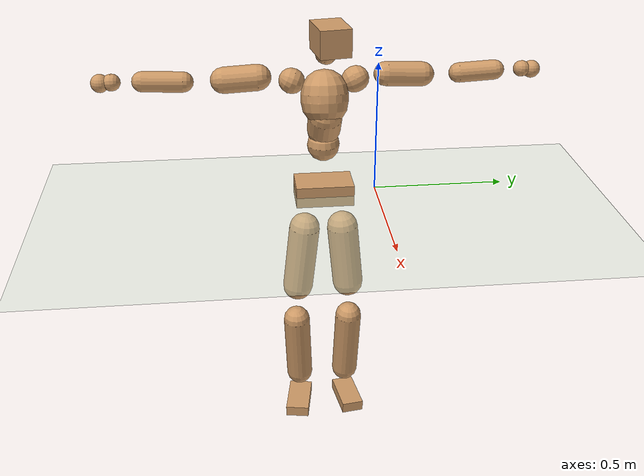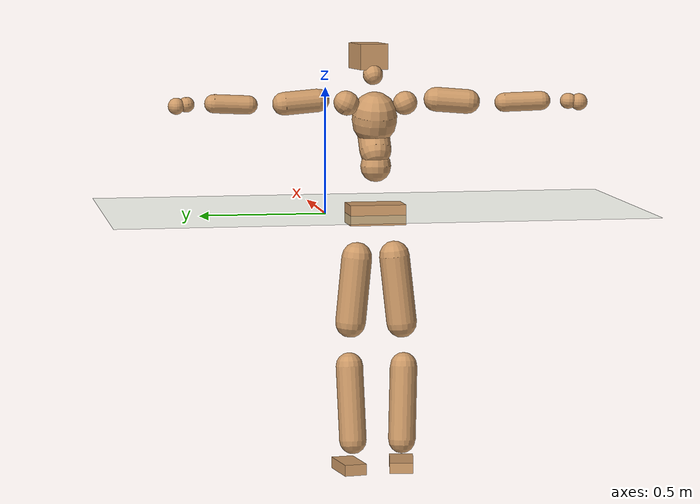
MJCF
<mujoco model="humanoid">
  <compiler coordinate="local" angle="radian"/>
  <default>
    <joint damping="0.0" armature="0.01" stiffness="0.0" limited="true"/>
    <geom conaffinity="1" condim="3" contype="7" margin="0.001" rgba="0.8 0.6 .4 1"/>
  </default>
  <asset>
    <texture type="skybox" builtin="gradient" rgb1=".4 .5 .6" rgb2="0 0 0" width="100" height="100"/>
    <texture builtin="flat" height="1278" mark="cross" markrgb="1 1 1" name="texgeom" random="0.01" rgb1="0.8 0.6 0.4" rgb2="0.8 0.6 0.4" type="cube" width="127"/>
    <texture builtin="checker" height="100" name="texplane" rgb1="0 0 0" rgb2="0.8 0.8 0.8" type="2d" width="100"/>
    <material name="MatPlane" reflectance="0.5" shininess="1" specular="1" texrepeat="60 60" texture="texplane"/>
    <material name="geom" texture="texgeom" texuniform="true"/>
  </asset>
  <worldbody>
    <light cutoff="100" diffuse="1 1 1" dir="-0 0 -1.3" directional="true" exponent="1" pos="0 0 1.3" specular=".1 .1 .1"/>
    <geom conaffinity="1" condim="3" name="floor" pos="0 0 0" rgba="0.8 0.9 0.8 1" size="100 100 .2" type="plane" material="MatPlane"/>
    <body name="Pelvis" pos="0.0006 -0.1985 0.0114">
      <freejoint name="Pelvis"/>
      <geom type="box" contype="1" conaffinity="1" density="5359.375554" pos="-0.0079 -0.0000 -0.0135" size="0.0696 0.1108 0.0404" quat="1.0000 0.0000 0.0000 0.0015" name="Pelvis"/>
      <body name="L_Hip" pos="-0.0211 0.0681 -0.0949">
        <joint name="L_Hip_x" type="hinge" pos="0 0 0" axis="1 0 0" stiffness="1600" damping="160" armature="0.02" range="-180.0000 180.0000"/>
        <joint name="L_Hip_y" type="hinge" pos="0 0 0" axis="0 1 0" stiffness="1600" damping="160" armature="0.02" range="-180.0000 180.0000"/>
        <joint name="L_Hip_z" type="hinge" pos="0 0 0" axis="0 0 1" stiffness="1600" damping="160" armature="0.02" range="-180.0000 180.0000"/>
        <geom type="capsule" contype="1" conaffinity="1" density="2040.816327" size="0.0608" fromto="0.0001 0.0088 -0.0904 0.0004 0.0341 -0.3493" name="L_Hip"/>
        <body name="L_Knee" pos="0.0005 0.0429 -0.4397">
          <joint name="L_Knee_x" type="hinge" pos="0 0 0" axis="1 0 0" stiffness="1600" damping="160" armature="0.02" range="-180.0000 180.0000"/>
          <joint name="L_Knee_y" type="hinge" pos="0 0 0" axis="0 1 0" stiffness="1600" damping="160" armature="0.02" range="-180.0000 180.0000"/>
          <joint name="L_Knee_z" type="hinge" pos="0 0 0" axis="0 0 1" stiffness="1600" damping="160" armature="0.02" range="-180.0000 180.0000"/>
          <geom type="capsule" contype="1" conaffinity="1" density="1234.567901" size="0.0539" fromto="-0.0085 -0.0025 -0.0835 -0.0387 -0.0113 -0.3785" name="L_Knee"/>
          <body name="L_Ankle" pos="-0.0472 -0.0138 -0.4619">
            <joint name="L_Ankle_x" type="hinge" pos="0 0 0" axis="1 0 0" stiffness="1600" damping="160" armature="0.02" range="-180.0000 180.0000"/>
            <joint name="L_Ankle_y" type="hinge" pos="0 0 0" axis="0 1 0" stiffness="1600" damping="160" armature="0.02" range="-180.0000 180.0000"/>
            <joint name="L_Ankle_z" type="hinge" pos="0 0 0" axis="0 0 1" stiffness="1600" damping="160" armature="0.02" range="-180.0000 180.0000"/>
            <geom type="box" contype="1" conaffinity="1" density="999.999971" pos="0.0633 0.0095 -0.0310" size="0.0892 0.0443 0.0223" quat="0.9972 0.0000 0.0000 0.0742" name="L_Ankle"/>
            <body name="L_Toe" pos="0.1266 0.019 -0.0621">
              <joint name="L_Toe_x" type="hinge" pos="0 0 0" axis="1 0 0" stiffness="1000" damping="100" armature="0.02" range="-180.0000 180.0000"/>
              <joint name="L_Toe_y" type="hinge" pos="0 0 0" axis="0 1 0" stiffness="1000" damping="100" armature="0.02" range="-180.0000 180.0000"/>
              <joint name="L_Toe_z" type="hinge" pos="0 0 0" axis="0 0 1" stiffness="1000" damping="100" armature="0.02" range="-180.0000 180.0000"/>
              <geom type="box" contype="1" conaffinity="1" density="9103172.923615" pos="0.0000 0.0000 0.0304" size="0.0009 0.0022 0.0011" quat="0.9967 0.0000 0.0000 0.0807" name="L_Toe"/>
            </body>
          </body>
        </body>
      </body>
      <body name="R_Hip" pos="-0.016 -0.0651 -0.093">
        <joint name="R_Hip_x" type="hinge" pos="0 0 0" axis="1 0 0" stiffness="1600" damping="160" armature="0.02" range="-180.0000 180.0000"/>
        <joint name="R_Hip_y" type="hinge" pos="0 0 0" axis="0 1 0" stiffness="1600" damping="160" armature="0.02" range="-180.0000 180.0000"/>
        <joint name="R_Hip_z" type="hinge" pos="0 0 0" axis="0 0 1" stiffness="1600" damping="160" armature="0.02" range="-180.0000 180.0000"/>
        <geom type="capsule" contype="1" conaffinity="1" density="2040.816327" size="0.06" fromto="-0.0007 -0.0098 -0.0894 -0.0030 -0.0390 -0.3576" name="R_Hip"/>
        <body name="R_Knee" pos="-0.0037 -0.0487 -0.4471">
          <joint name="R_Knee_x" type="hinge" pos="0 0 0" axis="1 0 0" stiffness="1600" damping="160" armature="0.02" range="-180.0000 180.0000"/>
          <joint name="R_Knee_y" type="hinge" pos="0 0 0" axis="0 1 0" stiffness="1600" damping="160" armature="0.02" range="-180.0000 180.0000"/>
          <joint name="R_Knee_z" type="hinge" pos="0 0 0" axis="0 0 1" stiffness="1600" damping="160" armature="0.02" range="-180.0000 180.0000"/>
          <geom type="capsule" contype="1" conaffinity="1" density="1234.567901" size="0.0542" fromto="-0.0080 0.0034 -0.0837 -0.0361 0.0151 -0.3769" name="R_Knee"/>
          <body name="R_Ankle" pos="-0.0442 0.0185 -0.4606">
            <joint name="R_Ankle_x" type="hinge" pos="0 0 0" axis="1 0 0" stiffness="1600" damping="160" armature="0.02" range="-180.0000 180.0000"/>
            <joint name="R_Ankle_y" type="hinge" pos="0 0 0" axis="0 1 0" stiffness="1600" damping="160" armature="0.02" range="-180.0000 180.0000"/>
            <joint name="R_Ankle_z" type="hinge" pos="0 0 0" axis="0 0 1" stiffness="1600" damping="160" armature="0.02" range="-180.0000 180.0000"/>
            <geom type="box" contype="1" conaffinity="1" density="999.999952" pos="0.0649 -0.0114 -0.0265" size="0.0911 0.0474 0.0219" quat="0.9963 0.0000 0.0000 -0.0864" name="R_Ankle"/>
            <body name="R_Toe" pos="0.1299 -0.0227 -0.053">
              <joint name="R_Toe_x" type="hinge" pos="0 0 0" axis="1 0 0" stiffness="1000" damping="100" armature="0.02" range="-180.0000 180.0000"/>
              <joint name="R_Toe_y" type="hinge" pos="0 0 0" axis="0 1 0" stiffness="1000" damping="100" armature="0.02" range="-180.0000 180.0000"/>
              <joint name="R_Toe_z" type="hinge" pos="0 0 0" axis="0 0 1" stiffness="1000" damping="100" armature="0.02" range="-180.0000 180.0000"/>
              <geom type="box" contype="1" conaffinity="1" density="8612583.535888" pos="0.0000 0.0000 0.0288" size="0.0008 0.0023 0.0012" quat="0.9970 0.0000 0.0000 -0.0778" name="R_Toe"/>
            </body>
          </body>
        </body>
      </body>
      <body name="Torso" pos="-0.0104 -0.0031 0.1068">
        <joint name="Torso_x" type="hinge" pos="0 0 0" axis="1 0 0" stiffness="2000" damping="200" armature="0.02" range="-180.0000 180.0000"/>
        <joint name="Torso_y" type="hinge" pos="0 0 0" axis="0 1 0" stiffness="2000" damping="200" armature="0.02" range="-180.0000 180.0000"/>
        <joint name="Torso_z" type="hinge" pos="0 0 0" axis="0 0 1" stiffness="2000" damping="200" armature="0.02" range="-180.0000 180.0000"/>
        <geom type="capsule" contype="1" conaffinity="1" density="2040.816327" size="0.0613" fromto="0.0017 0.0017 0.0674 0.0017 0.0017 0.0694" name="Torso"/>
        <body name="Spine" pos="0.0034 0.0034 0.1368">
          <joint name="Spine_x" type="hinge" pos="0 0 0" axis="1 0 0" stiffness="2000" damping="200" armature="0.02" range="-180.0000 180.0000"/>
          <joint name="Spine_y" type="hinge" pos="0 0 0" axis="0 1 0" stiffness="2000" damping="200" armature="0.02" range="-180.0000 180.0000"/>
          <joint name="Spine_z" type="hinge" pos="0 0 0" axis="0 0 1" stiffness="2000" damping="200" armature="0.02" range="-180.0000 180.0000"/>
          <geom type="capsule" contype="1" conaffinity="1" density="2040.816327" size="0.063" fromto="0.0293 0.0025 0.0558 -0.0031 -0.0003 -0.0059" name="Spine"/>
          <body name="Chest" pos="0.0262 0.0022 0.0499">
            <joint name="Chest_x" type="hinge" pos="0 0 0" axis="1 0 0" stiffness="2000" damping="200" armature="0.02" range="-180.0000 180.0000"/>
            <joint name="Chest_y" type="hinge" pos="0 0 0" axis="0 1 0" stiffness="2000" damping="200" armature="0.02" range="-180.0000 180.0000"/>
            <joint name="Chest_z" type="hinge" pos="0 0 0" axis="0 0 1" stiffness="2000" damping="200" armature="0.02" range="-180.0000 180.0000"/>
            <geom type="capsule" contype="1" conaffinity="1" density="2040.816327" size="0.0888" fromto="-0.0209 -0.0005 0.0863 -0.0140 -0.0003 0.0577" name="Chest"/>
            <body name="Neck" pos="-0.034 -0.0009 0.2066">
              <joint name="Neck_x" type="hinge" pos="0 0 0" axis="1 0 0" stiffness="1000" damping="100" armature="0.02" range="-180.0000 180.0000"/>
              <joint name="Neck_y" type="hinge" pos="0 0 0" axis="0 1 0" stiffness="1000" damping="100" armature="0.02" range="-180.0000 180.0000"/>
              <joint name="Neck_z" type="hinge" pos="0 0 0" axis="0 0 1" stiffness="1000" damping="100" armature="0.02" range="-180.0000 180.0000"/>
              <geom type="capsule" contype="1" conaffinity="1" density="1000" size="0.0395" fromto="0.0288 0.0038 0.0339 0.0301 0.0040 0.0354" name="Neck"/>
              <body name="Head" pos="0.0589 0.0078 0.0693">
                <joint name="Head_x" type="hinge" pos="0 0 0" axis="1 0 0" stiffness="1000" damping="100" armature="0.02" range="-180.0000 180.0000"/>
                <joint name="Head_y" type="hinge" pos="0 0 0" axis="0 1 0" stiffness="1000" damping="100" armature="0.02" range="-180.0000 180.0000"/>
                <joint name="Head_z" type="hinge" pos="0 0 0" axis="0 0 1" stiffness="1000" damping="100" armature="0.02" range="-180.0000 180.0000"/>
                <geom type="box" contype="1" conaffinity="1" density="2249.999866" pos="0.0305 0.0049 0.0357" size="0.0743 0.0568 0.0504" quat="0.9968 0.0000 0.0000 0.0799" name="Head"/>
              </body>
            </body>
            <body name="L_Thorax" pos="-0.0323 0.0737 0.1141">
              <joint name="L_Thorax_x" type="hinge" pos="0 0 0" axis="1 0 0" stiffness="1000" damping="100" armature="0.02" range="-180.0000 180.0000"/>
              <joint name="L_Thorax_y" type="hinge" pos="0 0 0" axis="0 1 0" stiffness="1000" damping="100" armature="0.02" range="-180.0000 180.0000"/>
              <joint name="L_Thorax_z" type="hinge" pos="0 0 0" axis="0 0 1" stiffness="1000" damping="100" armature="0.02" range="-180.0000 180.0000"/>
              <geom type="capsule" contype="1" conaffinity="1" density="1000" size="0.0477" fromto="-0.0023 0.0432 0.0201 -0.0020 0.0372 0.0173" name="L_Thorax"/>
              <body name="L_Shoulder" pos="-0.0043 0.0804 0.0374">
                <joint name="L_Shoulder_x" type="hinge" pos="0 0 0" axis="1 0 0" stiffness="1000" damping="100" armature="0.02" range="-720.0000 720.0000"/>
                <joint name="L_Shoulder_y" type="hinge" pos="0 0 0" axis="0 1 0" stiffness="1000" damping="100" armature="0.02" range="-720.0000 720.0000"/>
                <joint name="L_Shoulder_z" type="hinge" pos="0 0 0" axis="0 0 1" stiffness="1000" damping="100" armature="0.02" range="-720.0000 720.0000"/>
                <geom type="capsule" contype="1" conaffinity="1" density="1000" size="0.0457" fromto="-0.0077 0.0751 -0.0058 -0.0216 0.2106 -0.0162" name="L_Shoulder"/>
                <body name="L_Elbow" pos="-0.0293 0.2856 -0.022">
                  <joint name="L_Elbow_x" type="hinge" pos="0 0 0" axis="1 0 0" stiffness="1000" damping="100" armature="0.02" range="-720.0000 720.0000"/>
                  <joint name="L_Elbow_y" type="hinge" pos="0 0 0" axis="0 1 0" stiffness="1000" damping="100" armature="0.02" range="-720.0000 720.0000"/>
                  <joint name="L_Elbow_z" type="hinge" pos="0 0 0" axis="0 0 1" stiffness="1000" damping="100" armature="0.02" range="-720.0000 720.0000"/>
                  <geom type="capsule" contype="1" conaffinity="1" density="1000" size="0.0367" fromto="-0.0006 0.0666 0.0033 -0.0017 0.2016 0.0100" name="L_Elbow"/>
                  <body name="L_Wrist" pos="-0.0022 0.2682 0.0133">
                    <joint name="L_Wrist_x" type="hinge" pos="0 0 0" axis="1 0 0" stiffness="600" damping="60" armature="0.02" range="-180.0000 180.0000"/>
                    <joint name="L_Wrist_y" type="hinge" pos="0 0 0" axis="0 1 0" stiffness="600" damping="60" armature="0.02" range="-180.0000 180.0000"/>
                    <joint name="L_Wrist_z" type="hinge" pos="0 0 0" axis="0 0 1" stiffness="600" damping="60" armature="0.02" range="-180.0000 180.0000"/>
                    <geom type="capsule" contype="1" conaffinity="1" density="1000" size="0.0299" fromto="-0.0068 0.0395 -0.0049 -0.0072 0.0415 -0.0052" name="L_Wrist"/>
                    <body name="L_Hand" pos="-0.014 0.081 -0.0101">
                      <joint name="L_Hand_x" type="hinge" pos="0 0 0" axis="1 0 0" stiffness="600" damping="60" armature="0.02" range="-180.0000 180.0000"/>
                      <joint name="L_Hand_y" type="hinge" pos="0 0 0" axis="0 1 0" stiffness="600" damping="60" armature="0.02" range="-180.0000 180.0000"/>
                      <joint name="L_Hand_z" type="hinge" pos="0 0 0" axis="0 0 1" stiffness="600" damping="60" armature="0.02" range="-180.0000 180.0000"/>
                      <geom type="sphere" contype="1" conaffinity="1" density="1000" size="0.0324" pos="0.0000 0.0000 0.0000" name="L_Hand"/>
                    </body>
                  </body>
                </body>
              </body>
            </body>
            <body name="R_Thorax" pos="-0.0382 -0.0753 0.1112">
              <joint name="R_Thorax_x" type="hinge" pos="0 0 0" axis="1 0 0" stiffness="1000" damping="100" armature="0.02" range="-180.0000 180.0000"/>
              <joint name="R_Thorax_y" type="hinge" pos="0 0 0" axis="0 1 0" stiffness="1000" damping="100" armature="0.02" range="-180.0000 180.0000"/>
              <joint name="R_Thorax_z" type="hinge" pos="0 0 0" axis="0 0 1" stiffness="1000" damping="100" armature="0.02" range="-180.0000 180.0000"/>
              <geom type="capsule" contype="1" conaffinity="1" density="1000" size="0.0472" fromto="-0.0037 -0.0427 0.0194 -0.0039 -0.0445 0.0202" name="R_Thorax"/>
              <body name="R_Shoulder" pos="-0.0077 -0.0872 0.0397">
                <joint name="R_Shoulder_x" type="hinge" pos="0 0 0" axis="1 0 0" stiffness="1000" damping="100" armature="0.02" range="-720.0000 720.0000"/>
                <joint name="R_Shoulder_y" type="hinge" pos="0 0 0" axis="0 1 0" stiffness="1000" damping="100" armature="0.02" range="-720.0000 720.0000"/>
                <joint name="R_Shoulder_z" type="hinge" pos="0 0 0" axis="0 0 1" stiffness="1000" damping="100" armature="0.02" range="-720.0000 720.0000"/>
                <geom type="capsule" contype="1" conaffinity="1" density="1000" size="0.0484" fromto="-0.0059 -0.0780 -0.0062 -0.0154 -0.2036 -0.0161" name="R_Shoulder"/>
                <body name="R_Elbow" pos="-0.0213 -0.2816 -0.0222">
                  <joint name="R_Elbow_x" type="hinge" pos="0 0 0" axis="1 0 0" stiffness="1000" damping="100" armature="0.02" range="-720.0000 720.0000"/>
                  <joint name="R_Elbow_y" type="hinge" pos="0 0 0" axis="0 1 0" stiffness="1000" damping="100" armature="0.02" range="-720.0000 720.0000"/>
                  <joint name="R_Elbow_z" type="hinge" pos="0 0 0" axis="0 0 1" stiffness="1000" damping="100" armature="0.02" range="-720.0000 720.0000"/>
                  <geom type="capsule" contype="1" conaffinity="1" density="1000" size="0.0376" fromto="-0.0019 -0.0675 0.0021 -0.0062 -0.2153 0.0068" name="R_Elbow"/>
                  <body name="R_Wrist" pos="-0.0081 -0.2828 0.0089">
                    <joint name="R_Wrist_x" type="hinge" pos="0 0 0" axis="1 0 0" stiffness="600" damping="60" armature="0.02" range="-180.0000 180.0000"/>
                    <joint name="R_Wrist_y" type="hinge" pos="0 0 0" axis="0 1 0" stiffness="600" damping="60" armature="0.02" range="-180.0000 180.0000"/>
                    <joint name="R_Wrist_z" type="hinge" pos="0 0 0" axis="0 0 1" stiffness="600" damping="60" armature="0.02" range="-180.0000 180.0000"/>
                    <geom type="capsule" contype="1" conaffinity="1" density="1000" size="0.0315" fromto="-0.0054 -0.0412 -0.0038 -0.0056 -0.0432 -0.0039" name="R_Wrist"/>
                    <body name="R_Hand" pos="-0.011 -0.0845 -0.0077">
                      <joint name="R_Hand_x" type="hinge" pos="0 0 0" axis="1 0 0" stiffness="600" damping="60" armature="0.02" range="-180.0000 180.0000"/>
                      <joint name="R_Hand_y" type="hinge" pos="0 0 0" axis="0 1 0" stiffness="600" damping="60" armature="0.02" range="-180.0000 180.0000"/>
                      <joint name="R_Hand_z" type="hinge" pos="0 0 0" axis="0 0 1" stiffness="600" damping="60" armature="0.02" range="-180.0000 180.0000"/>
                      <geom type="sphere" contype="1" conaffinity="1" density="1000" size="0.0337" pos="0.0000 0.0000 0.0000" name="R_Hand"/>
                    </body>
                  </body>
                </body>
              </body>
            </body>
          </body>
        </body>
      </body>
    </body>
  </worldbody>
  <actuator>
    <motor name="L_Hip_x" joint="L_Hip_x" gear="500"/>
    <motor name="L_Hip_y" joint="L_Hip_y" gear="500"/>
    <motor name="L_Hip_z" joint="L_Hip_z" gear="500"/>
    <motor name="L_Knee_x" joint="L_Knee_x" gear="500"/>
    <motor name="L_Knee_y" joint="L_Knee_y" gear="500"/>
    <motor name="L_Knee_z" joint="L_Knee_z" gear="500"/>
    <motor name="L_Ankle_x" joint="L_Ankle_x" gear="500"/>
    <motor name="L_Ankle_y" joint="L_Ankle_y" gear="500"/>
    <motor name="L_Ankle_z" joint="L_Ankle_z" gear="500"/>
    <motor name="L_Toe_x" joint="L_Toe_x" gear="500"/>
    <motor name="L_Toe_y" joint="L_Toe_y" gear="500"/>
    <motor name="L_Toe_z" joint="L_Toe_z" gear="500"/>
    <motor name="R_Hip_x" joint="R_Hip_x" gear="500"/>
    <motor name="R_Hip_y" joint="R_Hip_y" gear="500"/>
    <motor name="R_Hip_z" joint="R_Hip_z" gear="500"/>
    <motor name="R_Knee_x" joint="R_Knee_x" gear="500"/>
    <motor name="R_Knee_y" joint="R_Knee_y" gear="500"/>
    <motor name="R_Knee_z" joint="R_Knee_z" gear="500"/>
    <motor name="R_Ankle_x" joint="R_Ankle_x" gear="500"/>
    <motor name="R_Ankle_y" joint="R_Ankle_y" gear="500"/>
    <motor name="R_Ankle_z" joint="R_Ankle_z" gear="500"/>
    <motor name="R_Toe_x" joint="R_Toe_x" gear="500"/>
    <motor name="R_Toe_y" joint="R_Toe_y" gear="500"/>
    <motor name="R_Toe_z" joint="R_Toe_z" gear="500"/>
    <motor name="Torso_x" joint="Torso_x" gear="500"/>
    <motor name="Torso_y" joint="Torso_y" gear="500"/>
    <motor name="Torso_z" joint="Torso_z" gear="500"/>
    <motor name="Spine_x" joint="Spine_x" gear="500"/>
    <motor name="Spine_y" joint="Spine_y" gear="500"/>
    <motor name="Spine_z" joint="Spine_z" gear="500"/>
    <motor name="Chest_x" joint="Chest_x" gear="500"/>
    <motor name="Chest_y" joint="Chest_y" gear="500"/>
    <motor name="Chest_z" joint="Chest_z" gear="500"/>
    <motor name="Neck_x" joint="Neck_x" gear="500"/>
    <motor name="Neck_y" joint="Neck_y" gear="500"/>
    <motor name="Neck_z" joint="Neck_z" gear="500"/>
    <motor name="Head_x" joint="Head_x" gear="500"/>
    <motor name="Head_y" joint="Head_y" gear="500"/>
    <motor name="Head_z" joint="Head_z" gear="500"/>
    <motor name="L_Thorax_x" joint="L_Thorax_x" gear="500"/>
    <motor name="L_Thorax_y" joint="L_Thorax_y" gear="500"/>
    <motor name="L_Thorax_z" joint="L_Thorax_z" gear="500"/>
    <motor name="L_Shoulder_x" joint="L_Shoulder_x" gear="500"/>
    <motor name="L_Shoulder_y" joint="L_Shoulder_y" gear="500"/>
    <motor name="L_Shoulder_z" joint="L_Shoulder_z" gear="500"/>
    <motor name="L_Elbow_x" joint="L_Elbow_x" gear="500"/>
    <motor name="L_Elbow_y" joint="L_Elbow_y" gear="500"/>
    <motor name="L_Elbow_z" joint="L_Elbow_z" gear="500"/>
    <motor name="L_Wrist_x" joint="L_Wrist_x" gear="500"/>
    <motor name="L_Wrist_y" joint="L_Wrist_y" gear="500"/>
    <motor name="L_Wrist_z" joint="L_Wrist_z" gear="500"/>
    <motor name="L_Hand_x" joint="L_Hand_x" gear="500"/>
    <motor name="L_Hand_y" joint="L_Hand_y" gear="500"/>
    <motor name="L_Hand_z" joint="L_Hand_z" gear="500"/>
    <motor name="R_Thorax_x" joint="R_Thorax_x" gear="500"/>
    <motor name="R_Thorax_y" joint="R_Thorax_y" gear="500"/>
    <motor name="R_Thorax_z" joint="R_Thorax_z" gear="500"/>
    <motor name="R_Shoulder_x" joint="R_Shoulder_x" gear="500"/>
    <motor name="R_Shoulder_y" joint="R_Shoulder_y" gear="500"/>
    <motor name="R_Shoulder_z" joint="R_Shoulder_z" gear="500"/>
    <motor name="R_Elbow_x" joint="R_Elbow_x" gear="500"/>
    <motor name="R_Elbow_y" joint="R_Elbow_y" gear="500"/>
    <motor name="R_Elbow_z" joint="R_Elbow_z" gear="500"/>
    <motor name="R_Wrist_x" joint="R_Wrist_x" gear="500"/>
    <motor name="R_Wrist_y" joint="R_Wrist_y" gear="500"/>
    <motor name="R_Wrist_z" joint="R_Wrist_z" gear="500"/>
    <motor name="R_Hand_x" joint="R_Hand_x" gear="500"/>
    <motor name="R_Hand_y" joint="R_Hand_y" gear="500"/>
    <motor name="R_Hand_z" joint="R_Hand_z" gear="500"/>
  </actuator>
  <contact>
    <exclude body1="Torso" body2="Chest"/>
    <exclude body1="Head" body2="Chest"/>
    <exclude body1="R_Knee" body2="R_Toe"/>
    <exclude body1="R_Knee" body2="L_Ankle"/>
    <exclude body1="R_Knee" body2="L_Toe"/>
    <exclude body1="L_Knee" body2="L_Toe"/>
    <exclude body1="L_Knee" body2="R_Ankle"/>
    <exclude body1="L_Knee" body2="R_Toe"/>
    <exclude body1="L_Shoulder" body2="Chest"/>
    <exclude body1="R_Shoulder" body2="Chest"/>
  </contact>
  <sensor/>
  <size njmax="700" nconmax="700"/>
</mujoco>
